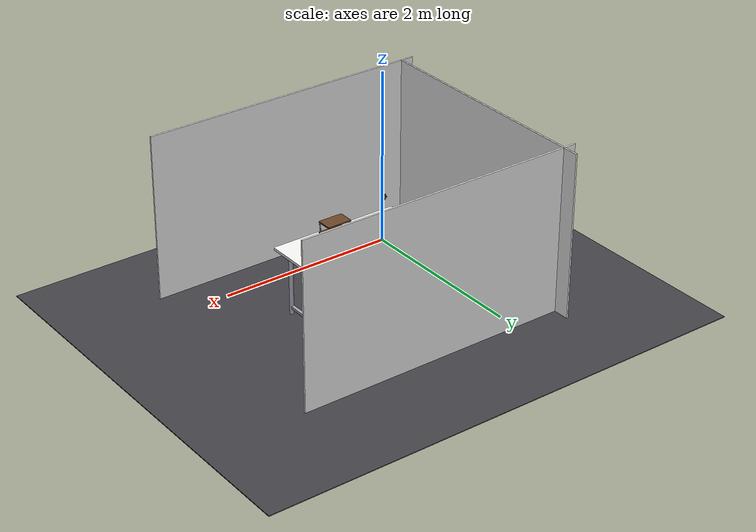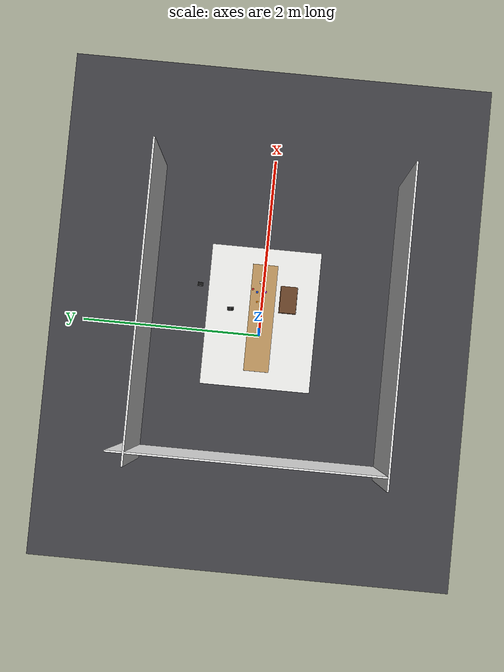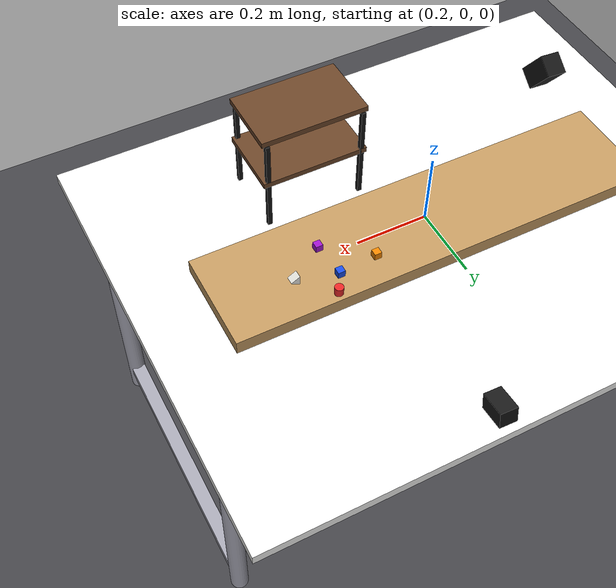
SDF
<sdf version="1.6">
 <world name="default">
  <physics name="2ms" type="ignored">
   <max_step_size>0.002</max_step_size>
   <real_time_factor>1.0</real_time_factor>
  </physics>
  <plugin filename="gz-sim-physics-system" name="gz::sim::systems::Physics"/>
  <plugin filename="gz-sim-user-commands-system" name="gz::sim::systems::UserCommands"/>
  <plugin filename="gz-sim-scene-broadcaster-system" name="gz::sim::systems::SceneBroadcaster"/>
  <plugin filename="gz-sim-sensors-system" name="gz::sim::systems::Sensors">
   <render_engine>ogre2</render_engine>
  </plugin>
  <gravity>0 0 -9.8</gravity>
  <light type="directional" name="sun">
   <pose>0 0 10 0 0 0</pose>
   <diffuse>0.8 0.8 0.8 1</diffuse>
   <specular>0.2 0.2 0.2 1</specular>
   <attenuation>
    <range>1000</range>
    <constant>0.9</constant>
    <linear>0.01</linear>
    <quadratic>0.001</quadratic>
   </attenuation>
   <direction>-0.5 0.1 -0.9</direction>
  </light>
  <light type="directional" name="fill_light">
   <cast_shadows>false</cast_shadows>
   <pose>0 0 5 0 0 0</pose>
   <diffuse>0.4 0.4 0.4 1</diffuse>
   <specular>0.1 0.1 0.1 1</specular>
   <attenuation>
    <range>1000</range>
    <constant>0.9</constant>
    <linear>0.01</linear>
    <quadratic>0.001</quadratic>
   </attenuation>
   <direction>0.3 -0.2 -0.9</direction>
  </light>
  <model name="floor">
   <static>true</static>
   <pose>0.2 0 -0.77 0 0 0</pose>
   <link name="link">
    <collision name="collision"><geometry><box><size>6.0 5.0 0.01</size></box></geometry></collision>
    <visual name="visual">
     <geometry><box><size>6.0 5.0 0.01</size></box></geometry>
     <material>
      <ambient>0.22 0.22 0.24 1</ambient>
      <diffuse>0.26 0.26 0.28 1</diffuse>
      <specular>0.02 0.02 0.02 1</specular>
     </material>
    </visual>
   </link>
  </model>
  <model name="table">
   <static>true</static>
   <link name="link">
    <collision name="tabletop_col">
     <pose>0.2 0 -0.055 0 0 0</pose>
     <geometry><box><size>1.6 1.25 0.03</size></box></geometry>
    </collision>
    <visual name="tabletop_vis">
     <pose>0.2 0 -0.055 0 0 0</pose>
     <geometry><box><size>1.6 1.25 0.03</size></box></geometry>
     <material>
      <ambient>0.94 0.94 0.93 1</ambient>
      <diffuse>0.96 0.96 0.95 1</diffuse>
      <specular>0.4 0.4 0.4 1</specular>
     </material>
    </visual>
    <collision name="leg_fl_col">
     <pose>-0.55 -0.375 -0.42 0 0 0</pose>
     <geometry><cylinder><radius>0.025</radius><length>0.695</length></cylinder></geometry>
    </collision>
    <visual name="leg_fl_vis">
     <pose>-0.55 -0.375 -0.42 0 0 0</pose>
     <geometry><cylinder><radius>0.025</radius><length>0.695</length></cylinder></geometry>
     <material>
      <ambient>0.55 0.55 0.60 1</ambient>
      <diffuse>0.65 0.65 0.70 1</diffuse>
      <specular>0.85 0.85 0.90 1</specular>
     </material>
    </visual>
    <collision name="leg_fr_col">
     <pose>-0.55 0.375 -0.42 0 0 0</pose>
     <geometry><cylinder><radius>0.025</radius><length>0.695</length></cylinder></geometry>
    </collision>
    <visual name="leg_fr_vis">
     <pose>-0.55 0.375 -0.42 0 0 0</pose>
     <geometry><cylinder><radius>0.025</radius><length>0.695</length></cylinder></geometry>
     <material>
      <ambient>0.55 0.55 0.60 1</ambient>
      <diffuse>0.65 0.65 0.70 1</diffuse>
      <specular>0.85 0.85 0.90 1</specular>
     </material>
    </visual>
    <collision name="leg_bl_col">
     <pose>0.95 -0.375 -0.42 0 0 0</pose>
     <geometry><cylinder><radius>0.025</radius><length>0.695</length></cylinder></geometry>
    </collision>
    <visual name="leg_bl_vis">
     <pose>0.95 -0.375 -0.42 0 0 0</pose>
     <geometry><cylinder><radius>0.025</radius><length>0.695</length></cylinder></geometry>
     <material>
      <ambient>0.55 0.55 0.60 1</ambient>
      <diffuse>0.65 0.65 0.70 1</diffuse>
      <specular>0.85 0.85 0.90 1</specular>
     </material>
    </visual>
    <collision name="leg_br_col">
     <pose>0.95 0.375 -0.42 0 0 0</pose>
     <geometry><cylinder><radius>0.025</radius><length>0.695</length></cylinder></geometry>
    </collision>
    <visual name="leg_br_vis">
     <pose>0.95 0.375 -0.42 0 0 0</pose>
     <geometry><cylinder><radius>0.025</radius><length>0.695</length></cylinder></geometry>
     <material>
      <ambient>0.55 0.55 0.60 1</ambient>
      <diffuse>0.65 0.65 0.70 1</diffuse>
      <specular>0.85 0.85 0.90 1</specular>
     </material>
    </visual>
    <visual name="crossbar_front_vis">
     <pose>-0.55 0 -0.68 0 0 0</pose>
     <geometry><box><size>0.04 0.71 0.03</size></box></geometry>
     <material>
      <ambient>0.55 0.55 0.60 1</ambient>
      <diffuse>0.65 0.65 0.70 1</diffuse>
      <specular>0.85 0.85 0.90 1</specular>
     </material>
    </visual>
    <visual name="crossbar_back_vis">
     <pose>0.95 0 -0.68 0 0 0</pose>
     <geometry><box><size>0.04 0.71 0.03</size></box></geometry>
     <material>
      <ambient>0.55 0.55 0.60 1</ambient>
      <diffuse>0.65 0.65 0.70 1</diffuse>
      <specular>0.85 0.85 0.90 1</specular>
     </material>
    </visual>
   </link>
  </model>
  <model name="wooden_plank">
   <static>true</static>
   <pose>0.2 0 -0.02 0 0 0</pose>
   <link name="link">
    <collision name="collision">
     <pose>0 0 -0.10 0 0 0</pose>
     <geometry><box><size>1.158 0.225 0.24</size></box></geometry>
     <surface>
      <friction><ode><mu>0.8</mu><mu2>0.8</mu2></ode></friction>
      <bounce><restitution_coefficient>0</restitution_coefficient><threshold>1e6</threshold></bounce>
      <contact>
       <collide_bitmask>0x0001</collide_bitmask>
       <ode><kp>1000000</kp><kd>100</kd><max_vel>0.01</max_vel><min_depth>0.001</min_depth></ode>
      </contact>
     </surface>
    </collision>
    <visual name="visual">
     <geometry><box><size>1.218 0.285 0.04</size></box></geometry>
     <material>
      <ambient>0.72 0.55 0.33 1</ambient>
      <diffuse>0.76 0.60 0.38 1</diffuse>
      <specular>0.08 0.06 0.04 1</specular>
     </material>
    </visual>
   </link>
  </model>
  <model name="block_teal">
   <static>false</static>
   <pose>0.49 0.07 0.010 0 0 0</pose>
   <link name="link">
    <inertial>
     <mass>0.1</mass>
     <inertia><ixx>6.67e-6</ixx><ixy>0</ixy><ixz>0</ixz><iyy>6.67e-6</iyy><iyz>0</iyz><izz>6.67e-6</izz></inertia>
    </inertial>
    <velocity_decay><angular>5.0</angular></velocity_decay>
    <collision name="collision">
     <geometry><box><size>0.020 0.020 0.020</size></box></geometry>
     <surface>
      <friction><ode><mu>2.5</mu><mu2>2.5</mu2></ode></friction>
      <bounce><restitution_coefficient>0</restitution_coefficient><threshold>1e6</threshold></bounce>
      <contact><ode><kp>100000</kp><kd>50</kd><max_vel>0.01</max_vel><min_depth>0.001</min_depth></ode></contact>
     </surface>
    </collision>
    <visual name="visual">
     <geometry><box><size>0.020 0.020 0.020</size></box></geometry>
     <material>
      <ambient>0.05 0.20 0.80 1</ambient>
      <diffuse>0.10 0.30 0.90 1</diffuse>
      <specular>0.30 0.40 0.70 1</specular>
     </material>
    </visual>
   </link>
  </model>
  <model name="block_purple">
   <static>false</static>
   <pose>0.50 -0.03 0.010 0 0 0</pose>
   <link name="link">
    <inertial>
     <mass>0.1</mass>
     <inertia><ixx>6.67e-6</ixx><ixy>0</ixy><ixz>0</ixz><iyy>6.67e-6</iyy><iyz>0</iyz><izz>6.67e-6</izz></inertia>
    </inertial>
    <velocity_decay><angular>5.0</angular></velocity_decay>
    <collision name="collision">
     <geometry><box><size>0.020 0.020 0.020</size></box></geometry>
     <surface>
      <friction><ode><mu>2.5</mu><mu2>2.5</mu2></ode></friction>
      <bounce><restitution_coefficient>0</restitution_coefficient><threshold>1e6</threshold></bounce>
      <contact><ode><kp>100000</kp><kd>50</kd><max_vel>0.01</max_vel><min_depth>0.001</min_depth></ode></contact>
     </surface>
    </collision>
    <visual name="visual">
     <geometry><box><size>0.020 0.020 0.020</size></box></geometry>
     <material>
      <ambient>0.55 0.00 0.70 1</ambient>
      <diffuse>0.62 0.08 0.80 1</diffuse>
      <specular>0.60 0.30 0.70 1</specular>
     </material>
    </visual>
   </link>
  </model>
  <model name="block_orange">
   <static>false</static>
   <pose>0.38 0.06 0.010 0 0 0</pose>
   <link name="link">
    <inertial>
     <mass>0.1</mass>
     <inertia><ixx>6.67e-6</ixx><ixy>0</ixy><ixz>0</ixz><iyy>6.67e-6</iyy><iyz>0</iyz><izz>6.67e-6</izz></inertia>
    </inertial>
    <velocity_decay><angular>5.0</angular></velocity_decay>
    <collision name="collision">
     <geometry><box><size>0.020 0.020 0.020</size></box></geometry>
     <surface>
      <friction><ode><mu>2.5</mu><mu2>2.5</mu2></ode></friction>
      <bounce><restitution_coefficient>0</restitution_coefficient><threshold>1e6</threshold></bounce>
      <contact><ode><kp>100000</kp><kd>50</kd><max_vel>0.01</max_vel><min_depth>0.001</min_depth></ode></contact>
     </surface>
    </collision>
    <visual name="visual">
     <geometry><box><size>0.020 0.020 0.020</size></box></geometry>
     <material>
      <ambient>0.90 0.40 0.00 1</ambient>
      <diffuse>0.95 0.52 0.00 1</diffuse>
      <specular>0.70 0.50 0.10 1</specular>
     </material>
    </visual>
   </link>
  </model>
  <model name="cylinder_red">
   <static>false</static>
   <pose>0.52 0.12 0.012 0 0 0</pose>
   <link name="link">
    <inertial>
     <mass>0.1</mass>
     <inertia><ixx>7.5e-6</ixx><ixy>0</ixy><ixz>0</ixz><iyy>7.5e-6</iyy><iyz>0</iyz><izz>7.2e-6</izz></inertia>
    </inertial>
    <velocity_decay><angular>5.0</angular></velocity_decay>
    <collision name="collision">
     <geometry><box><size>0.024 0.024 0.024</size></box></geometry>
     <surface>
      <friction><ode><mu>2.5</mu><mu2>2.5</mu2></ode></friction>
      <bounce><restitution_coefficient>0</restitution_coefficient><threshold>1e6</threshold></bounce>
      <contact><ode><kp>100000</kp><kd>50</kd><max_vel>0.01</max_vel><min_depth>0.001</min_depth></ode></contact>
     </surface>
    </collision>
    <visual name="visual">
     <geometry><cylinder><radius>0.012</radius><length>0.024</length></cylinder></geometry>
     <material>
      <ambient>0.80 0.10 0.10 1</ambient>
      <diffuse>0.90 0.15 0.15 1</diffuse>
      <specular>0.6 0.3 0.3 1</specular>
     </material>
    </visual>
   </link>
  </model>
  <model name="tri_prism">
   <static>false</static>
   <pose>0.60 0.04 0.014 0 0 0</pose>
   <link name="link">
    <inertial>
     <mass>0.1</mass>
     <inertia><ixx>7.0e-6</ixx><ixy>0</ixy><ixz>0</ixz><iyy>7.0e-6</iyy><iyz>0</iyz><izz>7.0e-6</izz></inertia>
    </inertial>
    <velocity_decay><angular>5.0</angular></velocity_decay>
    <collision name="collision">
     <geometry><box><size>0.0277 0.022 0.024</size></box></geometry>
     <surface>
      <friction><ode><mu>2.5</mu><mu2>2.5</mu2></ode></friction>
      <bounce><restitution_coefficient>0</restitution_coefficient><threshold>1e6</threshold></bounce>
      <contact><ode><kp>100000</kp><kd>50</kd><max_vel>0.01</max_vel><min_depth>0.001</min_depth></ode></contact>
     </surface>
    </collision>
    <visual name="visual">
     <geometry>
      <mesh><uri>file:///ar4_ws/install/annin_ar4_gazebo/share/annin_ar4_gazebo/meshes/tri_prism.stl</uri></mesh>
     </geometry>
     <material>
      <ambient>0.85 0.85 0.83 1</ambient>
      <diffuse>0.92 0.92 0.90 1</diffuse>
      <specular>0.1 0.1 0.1 1</specular>
     </material>
    </visual>
   </link>
  </model>
  <model name="side_table">
   <static>true</static>
   <pose>0.42 -0.29 -0.040 0 0 0</pose>
   <link name="link">
    <collision name="top_col">
     <pose>0 0 0.2835 0 0 0</pose>
     <geometry><box><size>0.297 0.185 0.015</size></box></geometry>
     <surface><contact><collide_bitmask>0x0001</collide_bitmask></contact></surface>
    </collision>
    <visual name="top_vis">
     <pose>0 0 0.2835 0 0 0</pose>
     <geometry><box><size>0.297 0.185 0.015</size></box></geometry>
     <material>
      <ambient>0.30 0.19 0.11 1</ambient>
      <diffuse>0.42 0.27 0.16 1</diffuse>
      <specular>0.15 0.15 0.15 1</specular>
     </material>
    </visual>
    <collision name="tier_col">
     <pose>0 0 0.1475 0 0 0</pose>
     <geometry><box><size>0.297 0.195 0.015</size></box></geometry>
     <surface><contact><collide_bitmask>0x0001</collide_bitmask></contact></surface>
    </collision>
    <visual name="tier_vis">
     <pose>0 0 0.1475 0 0 0</pose>
     <geometry><box><size>0.297 0.195 0.015</size></box></geometry>
     <material>
      <ambient>0.30 0.19 0.11 1</ambient>
      <diffuse>0.42 0.27 0.16 1</diffuse>
      <specular>0.15 0.15 0.15 1</specular>
     </material>
    </visual>
    <collision name="leg_fl_col">
     <pose>0.1345 0.0915 0.1380 0 0 0</pose>
     <geometry><box><size>0.012 0.012 0.276</size></box></geometry>
     <surface><contact><collide_bitmask>0x0001</collide_bitmask></contact></surface>
    </collision>
    <visual name="leg_fl_vis">
     <pose>0.1345 0.0915 0.1380 0 0 0</pose>
     <geometry><box><size>0.012 0.012 0.276</size></box></geometry>
     <material>
      <ambient>0.04 0.04 0.04 1</ambient>
      <diffuse>0.08 0.08 0.08 1</diffuse>
      <specular>0.15 0.15 0.15 1</specular>
     </material>
    </visual>
    <collision name="leg_fr_col">
     <pose>-0.1345 0.0915 0.1380 0 0 0</pose>
     <geometry><box><size>0.012 0.012 0.276</size></box></geometry>
     <surface><contact><collide_bitmask>0x0001</collide_bitmask></contact></surface>
    </collision>
    <visual name="leg_fr_vis">
     <pose>-0.1345 0.0915 0.1380 0 0 0</pose>
     <geometry><box><size>0.012 0.012 0.276</size></box></geometry>
     <material>
      <ambient>0.04 0.04 0.04 1</ambient>
      <diffuse>0.08 0.08 0.08 1</diffuse>
      <specular>0.15 0.15 0.15 1</specular>
     </material>
    </visual>
    <collision name="leg_bl_col">
     <pose>0.1345 -0.0915 0.1380 0 0 0</pose>
     <geometry><box><size>0.012 0.012 0.276</size></box></geometry>
     <surface><contact><collide_bitmask>0x0001</collide_bitmask></contact></surface>
    </collision>
    <visual name="leg_bl_vis">
     <pose>0.1345 -0.0915 0.1380 0 0 0</pose>
     <geometry><box><size>0.012 0.012 0.276</size></box></geometry>
     <material>
      <ambient>0.04 0.04 0.04 1</ambient>
      <diffuse>0.08 0.08 0.08 1</diffuse>
      <specular>0.15 0.15 0.15 1</specular>
     </material>
    </visual>
    <collision name="leg_br_col">
     <pose>-0.1345 -0.0915 0.1380 0 0 0</pose>
     <geometry><box><size>0.012 0.012 0.276</size></box></geometry>
     <surface><contact><collide_bitmask>0x0001</collide_bitmask></contact></surface>
    </collision>
    <visual name="leg_br_vis">
     <pose>-0.1345 -0.0915 0.1380 0 0 0</pose>
     <geometry><box><size>0.012 0.012 0.276</size></box></geometry>
     <material>
      <ambient>0.04 0.04 0.04 1</ambient>
      <diffuse>0.08 0.08 0.08 1</diffuse>
      <specular>0.15 0.15 0.15 1</specular>
     </material>
    </visual>
   </link>
  </model>
  <model name="back_wall">
   <static>true</static>
   <pose>0.2 1.30 0.23 0 0 0</pose>
   <link name="link">
    <collision name="collision"><geometry><box><size>3.5 0.02 2.0</size></box></geometry></collision>
    <visual name="visual">
     <geometry><box><size>3.5 0.02 2.0</size></box></geometry>
     <material>
      <ambient>0.92 0.92 0.92 1</ambient>
      <diffuse>0.95 0.95 0.95 1</diffuse>
      <specular>0.05 0.05 0.05 1</specular>
     </material>
    </visual>
   </link>
  </model>
  <model name="left_wall">
   <static>true</static>
   <pose>-1.4 0 0.23 0 0 0</pose>
   <link name="link">
    <visual name="visual">
     <geometry><box><size>0.02 3.0 2.0</size></box></geometry>
     <material>
      <ambient>0.92 0.92 0.92 1</ambient>
      <diffuse>0.95 0.95 0.95 1</diffuse>
      <specular>0.05 0.05 0.05 1</specular>
     </material>
    </visual>
   </link>
  </model>
  <model name="far_wall">
   <static>true</static>
   <pose>0.2 -1.50 0.23 0 0 0</pose>
   <link name="link">
    <visual name="visual">
     <geometry><box><size>3.5 0.02 2.0</size></box></geometry>
     <material>
      <ambient>0.92 0.92 0.92 1</ambient>
      <diffuse>0.95 0.95 0.95 1</diffuse>
      <specular>0.05 0.05 0.05 1</specular>
     </material>
    </visual>
   </link>
  </model>
  <model name="scene_camera">
   <static>true</static>
   <pose>0.501 0.707 0.306 -0.011 0.183 -1.614</pose>
   <link name="link">
    <visual name="body">
     <geometry><box><size>0.06 0.04 0.04</size></box></geometry>
     <material><ambient>0.05 0.05 0.05 1</ambient><diffuse>0.10 0.10 0.10 1</diffuse></material>
    </visual>
    <sensor name="scene_camera" type="camera">
     <always_on>true</always_on>
     <update_rate>30</update_rate>
     <camera>
      <horizontal_fov>0.924</horizontal_fov>
      <image><width>640</width><height>480</height><format>R8G8B8</format></image>
      <clip><near>0.05</near><far>12.0</far></clip>
     </camera>
     <topic>/scene_camera/image</topic>
     <gz_frame_id>scene_camera</gz_frame_id>
    </sensor>
   </link>
  </model>
  <model name="top_camera">
   <static>true</static>
   <pose>0.236 0.335 0.743 0.196 0.965 -1.381</pose>
   <link name="link">
    <visual name="body">
     <geometry><box><size>0.06 0.04 0.04</size></box></geometry>
     <material><ambient>0.05 0.05 0.05 1</ambient><diffuse>0.10 0.10 0.10 1</diffuse></material>
    </visual>
    <sensor name="top_camera" type="camera">
     <always_on>true</always_on>
     <update_rate>30</update_rate>
     <camera>
      <horizontal_fov>0.948</horizontal_fov>
      <image><width>640</width><height>480</height><format>R8G8B8</format></image>
      <clip><near>0.05</near><far>12.0</far></clip>
     </camera>
     <topic>/top_camera/image</topic>
     <gz_frame_id>top_camera</gz_frame_id>
    </sensor>
   </link>
  </model>
 </world>
</sdf>
